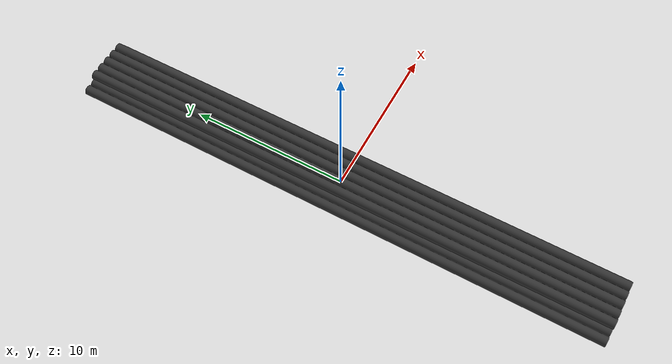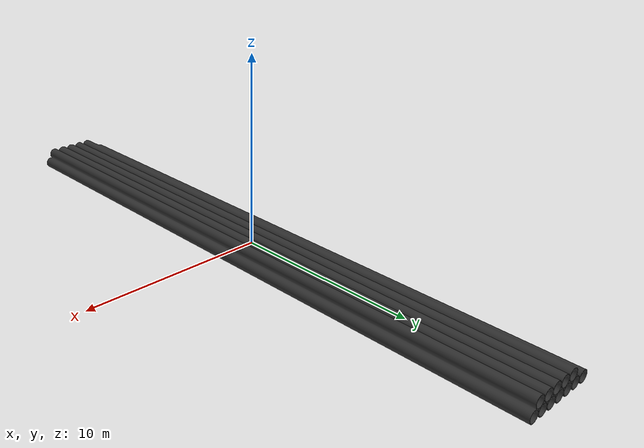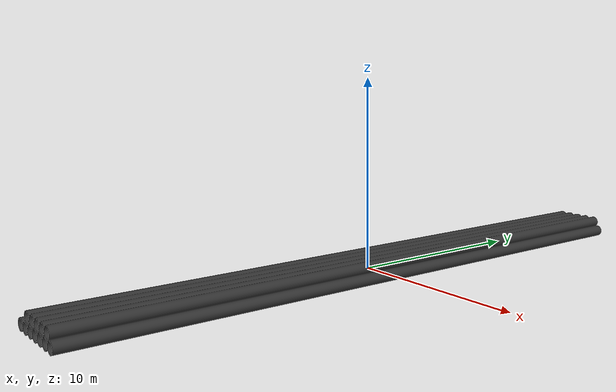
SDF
<?xml version='1.0'?>
<sdf version='1.5'>
  <model name='24inch_pipe_stack'>
    <static>true</static>
    <link name="pipe_stack">
      <visual name="visual">
            <geometry>
                <mesh>
                    <uri>model://small_pipe_stack/meshes/24inch_pipe_stack.dae</uri>
                </mesh>
            </geometry>
        </visual>
        <collision name="collision">
            <geometry>
                <mesh>
                    <uri>model://small_pipe_stack/meshes/24inch_pipe_stack.dae</uri>
                </mesh>
            </geometry>
        </collision>
    </link>
  </model>
</sdf>
